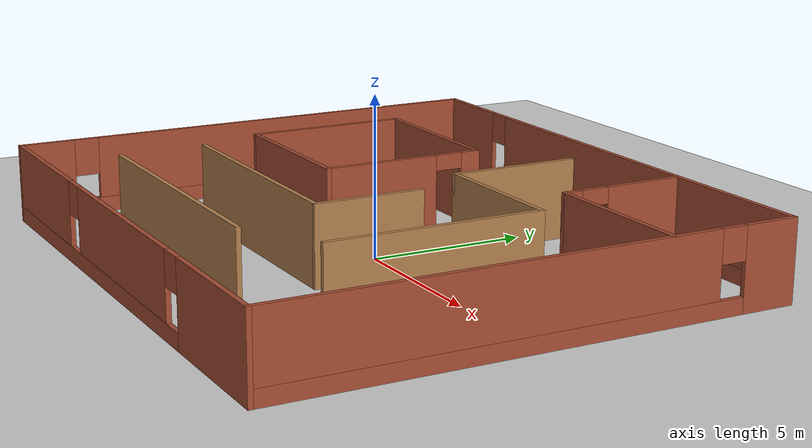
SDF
<sdf version="1.7">
 <world name="default">
  <light name="sun" type="directional">
   <pose>0 0 10 0 -0 0</pose>
   <diffuse>0.8 0.8 0.8 1</diffuse>
   <specular>0.2 0.2 0.2 1</specular>
   <attenuation>
    <range>1000</range>
    <constant>0.9</constant>
    <linear>0.01</linear>
    <quadratic>0.001</quadratic>
   </attenuation>
   <direction>-0.5 0.1 -0.9</direction>
   <spot><inner_angle>0</inner_angle><outer_angle>0</outer_angle><falloff>0</falloff></spot>
  </light>
  <model name="ground_plane">
   <static>1</static>
   <link name="link">
    <collision name="collision">
     <geometry><plane><normal>0 0 1</normal><size>100 100</size></plane></geometry>
     <surface><friction><ode><mu>100</mu><mu2>50</mu2></ode></friction></surface>
    </collision>
    <visual name="visual">
     <cast_shadows>0</cast_shadows>
     <geometry><plane><normal>0 0 1</normal><size>100 100</size></plane></geometry>
     <material>
      <script><uri>file://media/materials/scripts/gazebo.material</uri><name>Gazebo/Grey</name></script>
     </material>
    </visual>
   </link>
  </model>
  <gravity>0 0 -9.8</gravity>
  <magnetic_field>6e-06 2.3e-05 -4.2e-05</magnetic_field>
  <atmosphere type="adiabatic"/>
  <physics type="ode">
   <max_step_size>0.001</max_step_size>
   <real_time_factor>1</real_time_factor>
   <real_time_update_rate>1000</real_time_update_rate>
  </physics>
  <scene><ambient>0.4 0.4 0.4 1</ambient><background>0.7 0.7 0.7 1</background><shadows>1</shadows></scene>
  <audio><device>default</device></audio>
  <spherical_coordinates>
   <surface_model>EARTH_WGS84</surface_model>
   <latitude_deg>0</latitude_deg>
   <longitude_deg>0</longitude_deg>
   <elevation>0</elevation>
   <heading_deg>0</heading_deg>
  </spherical_coordinates>
  <model name="maze">
   <link name="Wall_10">
    <pose>-1.7 1.9 0 0 -0 -1.5708</pose>
    <visual name="Wall_10_Visual_0">
     <pose>-2.34689 0 1.25 0 -0 0</pose>
     <geometry><box><size>0.656221 0.15 2.5</size></box></geometry>
     <material>
      <script><uri>file://media/materials/scripts/gazebo.material</uri><name>Gazebo/Bricks</name></script>
      <ambient>1 1 1 1</ambient>
     </material>
     <meta><layer>0</layer></meta>
    </visual>
    <collision name="Wall_10_Collision_0">
     <geometry><box><size>0.656221 0.15 2.5</size></box></geometry>
     <pose>-2.34689 0 1.25 0 -0 0</pose>
    </collision>
    <visual name="Wall_10_Visual_1">
     <pose>0.77811 0 1.25 0 -0 0</pose>
     <geometry><box><size>3.79378 0.15 2.5</size></box></geometry>
     <material>
      <script><uri>file://media/materials/scripts/gazebo.material</uri><name>Gazebo/Bricks</name></script>
      <ambient>1 1 1 1</ambient>
     </material>
     <meta><layer>0</layer></meta>
    </visual>
    <collision name="Wall_10_Collision_1">
     <geometry><box><size>3.79378 0.15 2.5</size></box></geometry>
     <pose>0.77811 0 1.25 0 -0 0</pose>
    </collision>
    <visual name="Wall_10_Visual_2">
     <pose>-1.56878 0 2.25 0 -0 0</pose>
     <geometry><box><size>0.9 0.15 0.5</size></box></geometry>
     <material>
      <script><uri>file://media/materials/scripts/gazebo.material</uri><name>Gazebo/Bricks</name></script>
      <ambient>1 1 1 1</ambient>
     </material>
     <meta><layer>0</layer></meta>
    </visual>
    <collision name="Wall_10_Collision_2">
     <geometry><box><size>0.9 0.15 0.5</size></box></geometry>
     <pose>-1.56878 0 2.25 0 -0 0</pose>
    </collision>
   </link>
   <link name="Wall_11">
    <collision name="Wall_11_Collision">
     <geometry><box><size>5.45 0.15 2.5</size></box></geometry>
     <pose>0 0 1.25 0 -0 0</pose>
    </collision>
    <visual name="Wall_11_Visual">
     <pose>0 0 1.25 0 -0 0</pose>
     <geometry><box><size>5.45 0.15 2.5</size></box></geometry>
     <material>
      <script><uri>file://media/materials/scripts/gazebo.material</uri><name>Gazebo/Bricks</name></script>
      <ambient>1 1 1 1</ambient>
     </material>
     <meta><layer>0</layer></meta>
    </visual>
    <pose>-4.35 -0.7 0 0 -0 3.14159</pose>
   </link>
   <link name="Wall_12">
    <collision name="Wall_12_Collision">
     <geometry><box><size>5.35 0.15 2.5</size></box></geometry>
     <pose>0 0 1.25 0 -0 0</pose>
    </collision>
    <visual name="Wall_12_Visual">
     <pose>0 0 1.25 0 -0 0</pose>
     <geometry><box><size>5.35 0.15 2.5</size></box></geometry>
     <material>
      <script><uri>file://media/materials/scripts/gazebo.material</uri><name>Gazebo/Bricks</name></script>
      <ambient>1 1 1 1</ambient>
     </material>
     <meta><layer>0</layer></meta>
    </visual>
    <pose>-7 1.9 0 0 -0 1.5708</pose>
   </link>
   <link name="Wall_14">
    <collision name="Wall_14_Collision">
     <geometry><box><size>8.25 0.15 2.5</size></box></geometry>
     <pose>0 0 1.25 0 -0 0</pose>
    </collision>
    <visual name="Wall_14_Visual">
     <pose>0 0 1.25 0 -0 0</pose>
     <geometry><box><size>8.25 0.15 2.5</size></box></geometry>
     <material>
      <script><uri>file://media/materials/scripts/gazebo.material</uri><name>Gazebo/Wood</name></script>
      <ambient>1 1 1 1</ambient>
     </material>
     <meta><layer>0</layer></meta>
    </visual>
    <pose>-2.29976 -2.79181 0 0 -0 0</pose>
   </link>
   <link name="Wall_15">
    <collision name="Wall_15_Collision">
     <geometry><box><size>3.5 0.15 2.5</size></box></geometry>
     <pose>0 0 1.25 0 -0 0</pose>
    </collision>
    <visual name="Wall_15_Visual">
     <pose>0 0 1.25 0 -0 0</pose>
     <geometry><box><size>3.5 0.15 2.5</size></box></geometry>
     <material>
      <script><uri>file://media/materials/scripts/gazebo.material</uri><name>Gazebo/Wood</name></script>
      <ambient>1 1 1 1</ambient>
     </material>
     <meta><layer>0</layer></meta>
    </visual>
    <pose>1.75024 -1.11681 0 0 -0 1.5708</pose>
   </link>
   <link name="Wall_21">
    <pose>4 6 0 0 -0 -1.5708</pose>
    <visual name="Wall_21_Visual_0">
     <pose>-0.7625 0 1.25 0 -0 0</pose>
     <geometry><box><size>2.625 0.15 2.5</size></box></geometry>
     <material>
      <script><uri>file://media/materials/scripts/gazebo.material</uri><name>Gazebo/Bricks</name></script>
      <ambient>1 1 1 1</ambient>
     </material>
     <meta><layer>0</layer></meta>
    </visual>
    <collision name="Wall_21_Collision_0">
     <geometry><box><size>2.625 0.15 2.5</size></box></geometry>
     <pose>-0.7625 0 1.25 0 -0 0</pose>
    </collision>
    <visual name="Wall_21_Visual_1">
     <pose>1.7625 0 1.25 0 -0 0</pose>
     <geometry><box><size>0.625 0.15 2.5</size></box></geometry>
     <material>
      <script><uri>file://media/materials/scripts/gazebo.material</uri><name>Gazebo/Bricks</name></script>
      <ambient>1 1 1 1</ambient>
     </material>
     <meta><layer>0</layer></meta>
    </visual>
    <collision name="Wall_21_Collision_1">
     <geometry><box><size>0.625 0.15 2.5</size></box></geometry>
     <pose>1.7625 0 1.25 0 -0 0</pose>
    </collision>
    <visual name="Wall_21_Visual_2">
     <pose>1 0 2.25 0 -0 0</pose>
     <geometry><box><size>0.9 0.15 0.5</size></box></geometry>
     <material>
      <script><uri>file://media/materials/scripts/gazebo.material</uri><name>Gazebo/Bricks</name></script>
      <ambient>1 1 1 1</ambient>
     </material>
     <meta><layer>0</layer></meta>
    </visual>
    <collision name="Wall_21_Collision_2">
     <geometry><box><size>0.9 0.15 0.5</size></box></geometry>
     <pose>1 0 2.25 0 -0 0</pose>
    </collision>
   </link>
   <link name="Wall_22">
    <collision name="Wall_22_Collision">
     <geometry><box><size>5.15 0.15 2.5</size></box></geometry>
     <pose>0 0 1.25 0 -0 0</pose>
    </collision>
    <visual name="Wall_22_Visual">
     <pose>0 0 1.25 0 -0 0</pose>
     <geometry><box><size>5.15 0.15 2.5</size></box></geometry>
     <material>
      <script><uri>file://media/materials/scripts/gazebo.material</uri><name>Gazebo/Bricks</name></script>
      <ambient>1 1 1 1</ambient>
     </material>
     <meta><layer>0</layer></meta>
    </visual>
    <pose>6.5 4 0 0 -0 0</pose>
   </link>
   <link name="Wall_27">
    <collision name="Wall_27_Collision">
     <geometry><box><size>4.25 0.15 2.5</size></box></geometry>
     <pose>0 0 1.25 0 -0 0</pose>
    </collision>
    <visual name="Wall_27_Visual">
     <pose>0 0 1.25 0 -0 0</pose>
     <geometry><box><size>4.25 0.15 2.5</size></box></geometry>
     <material>
      <script><uri>file://media/materials/scripts/gazebo.material</uri><name>Gazebo/Wood</name></script>
      <ambient>1 1 1 1</ambient>
     </material>
     <meta><layer>0</layer></meta>
    </visual>
    <pose>0.649057 4.42252 0 0 -0 -1.5708</pose>
   </link>
   <link name="Wall_28">
    <collision name="Wall_28_Collision">
     <geometry><box><size>4.75 0.15 2.5</size></box></geometry>
     <pose>0 0 1.25 0 -0 0</pose>
    </collision>
    <visual name="Wall_28_Visual">
     <pose>0 0 1.25 0 -0 0</pose>
     <geometry><box><size>4.75 0.15 2.5</size></box></geometry>
     <material>
      <script><uri>file://media/materials/scripts/gazebo.material</uri><name>Gazebo/Wood</name></script>
      <ambient>1 1 1 1</ambient>
     </material>
     <meta><layer>0</layer></meta>
    </visual>
    <pose>2.94906 2.37252 0 0 -0 0</pose>
   </link>
   <link name="Wall_29">
    <collision name="Wall_29_Collision">
     <geometry><box><size>6.75 0.15 2.5</size></box></geometry>
     <pose>0 0 1.25 0 -0 0</pose>
    </collision>
    <visual name="Wall_29_Visual">
     <pose>0 0 1.25 0 -0 0</pose>
     <geometry><box><size>6.75 0.15 2.5</size></box></geometry>
     <material>
      <script><uri>file://media/materials/scripts/gazebo.material</uri><name>Gazebo/Wood</name></script>
      <ambient>1 1 1 1</ambient>
     </material>
     <meta><layer>0</layer></meta>
    </visual>
    <pose>5.24906 -0.927482 0 0 -0 -1.5708</pose>
   </link>
   <link name="Wall_31">
    <collision name="Wall_31_Collision">
     <geometry><box><size>9.25 0.15 2.5</size></box></geometry>
     <pose>0 0 1.25 0 -0 0</pose>
    </collision>
    <visual name="Wall_31_Visual">
     <pose>0 0 1.25 0 -0 0</pose>
     <geometry><box><size>9.25 0.15 2.5</size></box></geometry>
     <material>
      <script><uri>file://media/materials/scripts/gazebo.material</uri><name>Gazebo/Wood</name></script>
      <ambient>1 1 1 1</ambient>
     </material>
     <meta><layer>0</layer></meta>
    </visual>
    <pose>-1.67839 -5.6237 0 0 -0 0</pose>
   </link>
   <link name="Wall_4">
    <pose>0 8 0 0 -0 0</pose>
    <visual name="Wall_4_Visual_0">
     <pose>-7.64942 0 1.25 0 -0 0</pose>
     <geometry><box><size>2.85116 0.15 2.5</size></box></geometry>
     <material>
      <script><uri>file://media/materials/scripts/gazebo.material</uri><name>Gazebo/Bricks</name></script>
      <ambient>1 1 1 1</ambient>
     </material>
     <meta><layer>0</layer></meta>
    </visual>
    <collision name="Wall_4_Collision_0">
     <geometry><box><size>2.85116 0.15 2.5</size></box></geometry>
     <pose>-7.64942 0 1.25 0 -0 0</pose>
    </collision>
    <visual name="Wall_4_Visual_1">
     <pose>1.42558 0 0.25 0 -0 0</pose>
     <geometry><box><size>15.2988 0.15 0.5</size></box></geometry>
     <material>
      <script><uri>file://media/materials/scripts/gazebo.material</uri><name>Gazebo/Bricks</name></script>
      <ambient>1 1 1 1</ambient>
     </material>
     <meta><layer>0</layer></meta>
    </visual>
    <collision name="Wall_4_Collision_1">
     <geometry><box><size>15.2988 0.15 0.5</size></box></geometry>
     <pose>1.42558 0 0.25 0 -0 0</pose>
    </collision>
    <visual name="Wall_4_Visual_2">
     <pose>1.82558 0 1.5 0 -0 0</pose>
     <geometry><box><size>14.4988 0.15 2</size></box></geometry>
     <material>
      <script><uri>file://media/materials/scripts/gazebo.material</uri><name>Gazebo/Bricks</name></script>
      <ambient>1 1 1 1</ambient>
     </material>
     <meta><layer>0</layer></meta>
    </visual>
    <collision name="Wall_4_Collision_2">
     <geometry><box><size>14.4988 0.15 2</size></box></geometry>
     <pose>1.82558 0 1.5 0 -0 0</pose>
    </collision>
    <visual name="Wall_4_Visual_3">
     <pose>-5.82383 0 2 0 -0 0</pose>
     <geometry><box><size>0.8 0.15 1</size></box></geometry>
     <material>
      <script><uri>file://media/materials/scripts/gazebo.material</uri><name>Gazebo/Bricks</name></script>
      <ambient>1 1 1 1</ambient>
     </material>
     <meta><layer>0</layer></meta>
    </visual>
    <collision name="Wall_4_Collision_3">
     <geometry><box><size>0.8 0.15 1</size></box></geometry>
     <pose>-5.82383 0 2 0 -0 0</pose>
    </collision>
   </link>
   <link name="Wall_5">
    <pose>9 0 0 0 -0 -1.5708</pose>
    <visual name="Wall_5_Visual_0">
     <pose>-7.2108 0 1.25 0 -0 0</pose>
     <geometry><box><size>1.7284 0.15 2.5</size></box></geometry>
     <material>
      <script><uri>file://media/materials/scripts/gazebo.material</uri><name>Gazebo/Bricks</name></script>
      <ambient>1 1 1 1</ambient>
     </material>
     <meta><layer>0</layer></meta>
    </visual>
    <collision name="Wall_5_Collision_0">
     <geometry><box><size>1.7284 0.15 2.5</size></box></geometry>
     <pose>-7.2108 0 1.25 0 -0 0</pose>
    </collision>
    <visual name="Wall_5_Visual_1">
     <pose>0.864202 0 0.25 0 -0 0</pose>
     <geometry><box><size>14.4216 0.15 0.5</size></box></geometry>
     <material>
      <script><uri>file://media/materials/scripts/gazebo.material</uri><name>Gazebo/Bricks</name></script>
      <ambient>1 1 1 1</ambient>
     </material>
     <meta><layer>0</layer></meta>
    </visual>
    <collision name="Wall_5_Collision_1">
     <geometry><box><size>14.4216 0.15 0.5</size></box></geometry>
     <pose>0.864202 0 0.25 0 -0 0</pose>
    </collision>
    <visual name="Wall_5_Visual_2">
     <pose>1.2642 0 1.5 0 -0 0</pose>
     <geometry><box><size>13.6216 0.15 2</size></box></geometry>
     <material>
      <script><uri>file://media/materials/scripts/gazebo.material</uri><name>Gazebo/Bricks</name></script>
      <ambient>1 1 1 1</ambient>
     </material>
     <meta><layer>0</layer></meta>
    </visual>
    <collision name="Wall_5_Collision_2">
     <geometry><box><size>13.6216 0.15 2</size></box></geometry>
     <pose>1.2642 0 1.5 0 -0 0</pose>
    </collision>
    <visual name="Wall_5_Visual_3">
     <pose>-5.9466 0 2 0 -0 0</pose>
     <geometry><box><size>0.8 0.15 1</size></box></geometry>
     <material>
      <script><uri>file://media/materials/scripts/gazebo.material</uri><name>Gazebo/Bricks</name></script>
      <ambient>1 1 1 1</ambient>
     </material>
     <meta><layer>0</layer></meta>
    </visual>
    <collision name="Wall_5_Collision_3">
     <geometry><box><size>0.8 0.15 1</size></box></geometry>
     <pose>-5.9466 0 2 0 -0 0</pose>
    </collision>
   </link>
   <link name="Wall_6">
    <pose>0 -8 0 0 -0 3.14159</pose>
    <visual name="Wall_6_Visual_0">
     <pose>-6.90276 0 1.25 0 -0 0</pose>
     <geometry><box><size>4.34449 0.15 2.5</size></box></geometry>
     <material>
      <script><uri>file://media/materials/scripts/gazebo.material</uri><name>Gazebo/Bricks</name></script>
      <ambient>1 1 1 1</ambient>
     </material>
     <meta><layer>0</layer></meta>
    </visual>
    <collision name="Wall_6_Collision_0">
     <geometry><box><size>4.34449 0.15 2.5</size></box></geometry>
     <pose>-6.90276 0 1.25 0 -0 0</pose>
    </collision>
    <visual name="Wall_6_Visual_1">
     <pose>2.17224 0 0.25 0 -0 0</pose>
     <geometry><box><size>13.8055 0.15 0.5</size></box></geometry>
     <material>
      <script><uri>file://media/materials/scripts/gazebo.material</uri><name>Gazebo/Bricks</name></script>
      <ambient>1 1 1 1</ambient>
     </material>
     <meta><layer>0</layer></meta>
    </visual>
    <collision name="Wall_6_Collision_1">
     <geometry><box><size>13.8055 0.15 0.5</size></box></geometry>
     <pose>2.17224 0 0.25 0 -0 0</pose>
    </collision>
    <visual name="Wall_6_Visual_2">
     <pose>-0.426551 0 1.5 0 -0 0</pose>
     <geometry><box><size>7.00793 0.15 2</size></box></geometry>
     <material>
      <script><uri>file://media/materials/scripts/gazebo.material</uri><name>Gazebo/Bricks</name></script>
      <ambient>1 1 1 1</ambient>
     </material>
     <meta><layer>0</layer></meta>
    </visual>
    <collision name="Wall_6_Collision_2">
     <geometry><box><size>7.00793 0.15 2</size></box></geometry>
     <pose>-0.426551 0 1.5 0 -0 0</pose>
    </collision>
    <visual name="Wall_6_Visual_3">
     <pose>6.47621 0 1.5 0 -0 0</pose>
     <geometry><box><size>5.19759 0.15 2</size></box></geometry>
     <material>
      <script><uri>file://media/materials/scripts/gazebo.material</uri><name>Gazebo/Bricks</name></script>
      <ambient>1 1 1 1</ambient>
     </material>
     <meta><layer>0</layer></meta>
    </visual>
    <collision name="Wall_6_Collision_3">
     <geometry><box><size>5.19759 0.15 2</size></box></geometry>
     <pose>6.47621 0 1.5 0 -0 0</pose>
    </collision>
    <visual name="Wall_6_Visual_4">
     <pose>-4.33051 0 2 0 -0 0</pose>
     <geometry><box><size>0.8 0.15 1</size></box></geometry>
     <material>
      <script><uri>file://media/materials/scripts/gazebo.material</uri><name>Gazebo/Bricks</name></script>
      <ambient>1 1 1 1</ambient>
     </material>
     <meta><layer>0</layer></meta>
    </visual>
    <collision name="Wall_6_Collision_4">
     <geometry><box><size>0.8 0.15 1</size></box></geometry>
     <pose>-4.33051 0 2 0 -0 0</pose>
    </collision>
    <visual name="Wall_6_Visual_5">
     <pose>3.47741 0 2 0 -0 0</pose>
     <geometry><box><size>0.8 0.15 1</size></box></geometry>
     <material>
      <script><uri>file://media/materials/scripts/gazebo.material</uri><name>Gazebo/Bricks</name></script>
      <ambient>1 1 1 1</ambient>
     </material>
     <meta><layer>0</layer></meta>
    </visual>
    <collision name="Wall_6_Collision_5">
     <geometry><box><size>0.8 0.15 1</size></box></geometry>
     <pose>3.47741 0 2 0 -0 0</pose>
    </collision>
   </link>
   <link name="Wall_7">
    <pose>-9 0 0 0 -0 1.5708</pose>
    <visual name="Wall_7_Visual_0">
     <pose>-7.17072 0 1.25 0 -0 0</pose>
     <geometry><box><size>1.80857 0.15 2.5</size></box></geometry>
     <material>
      <script><uri>file://media/materials/scripts/gazebo.material</uri><name>Gazebo/Bricks</name></script>
      <ambient>1 1 1 1</ambient>
     </material>
     <meta><layer>0</layer></meta>
    </visual>
    <collision name="Wall_7_Collision_0">
     <geometry><box><size>1.80857 0.15 2.5</size></box></geometry>
     <pose>-7.17072 0 1.25 0 -0 0</pose>
    </collision>
    <visual name="Wall_7_Visual_1">
     <pose>0.904283 0 0.25 0 -0 0</pose>
     <geometry><box><size>14.3414 0.15 0.5</size></box></geometry>
     <material>
      <script><uri>file://media/materials/scripts/gazebo.material</uri><name>Gazebo/Bricks</name></script>
      <ambient>1 1 1 1</ambient>
     </material>
     <meta><layer>0</layer></meta>
    </visual>
    <collision name="Wall_7_Collision_1">
     <geometry><box><size>14.3414 0.15 0.5</size></box></geometry>
     <pose>0.904283 0 0.25 0 -0 0</pose>
    </collision>
    <visual name="Wall_7_Visual_2">
     <pose>1.30428 0 1.5 0 -0 0</pose>
     <geometry><box><size>13.5414 0.15 2</size></box></geometry>
     <material>
      <script><uri>file://media/materials/scripts/gazebo.material</uri><name>Gazebo/Bricks</name></script>
      <ambient>1 1 1 1</ambient>
     </material>
     <meta><layer>0</layer></meta>
    </visual>
    <collision name="Wall_7_Collision_2">
     <geometry><box><size>13.5414 0.15 2</size></box></geometry>
     <pose>1.30428 0 1.5 0 -0 0</pose>
    </collision>
    <visual name="Wall_7_Visual_3">
     <pose>-5.86643 0 1.9 0 -0 0</pose>
     <geometry><box><size>0.8 0.15 1.2</size></box></geometry>
     <material>
      <script><uri>file://media/materials/scripts/gazebo.material</uri><name>Gazebo/Bricks</name></script>
      <ambient>1 1 1 1</ambient>
     </material>
     <meta><layer>0</layer></meta>
    </visual>
    <collision name="Wall_7_Collision_3">
     <geometry><box><size>0.8 0.15 1.2</size></box></geometry>
     <pose>-5.86643 0 1.9 0 -0 0</pose>
    </collision>
   </link>
   <link name="Wall_9">
    <collision name="Wall_9_Collision">
     <geometry><box><size>5.45 0.15 2.5</size></box></geometry>
     <pose>0 0 1.25 0 -0 0</pose>
    </collision>
    <visual name="Wall_9_Visual">
     <pose>0 0 1.25 0 -0 0</pose>
     <geometry><box><size>5.45 0.15 2.5</size></box></geometry>
     <material>
      <script><uri>file://media/materials/scripts/gazebo.material</uri><name>Gazebo/Bricks</name></script>
      <ambient>1 1 1 1</ambient>
     </material>
     <meta><layer>0</layer></meta>
    </visual>
    <pose>-4.35 4.5 0 0 -0 0</pose>
   </link>
   <static>1</static>
  </model>
  <model name="maze_0">
   <link name="link_0">
    <inertial>
     <mass>1</mass>
     <inertia>
      <ixx>0.166667</ixx>
      <ixy>0</ixy>
      <ixz>0</ixz>
      <iyy>0.166667</iyy>
      <iyz>0</iyz>
      <izz>0.166667</izz>
     </inertia>
    </inertial>
    <pose>5.67833 4.90849 0 0 -0 0</pose>
    <visual name="visual">
     <geometry><box><size>1 1 1</size></box></geometry>
     <material>
      <lighting>1</lighting>
      <script><uri>file://media/materials/scripts/gazebo.material</uri><name>Gazebo/Grey</name></script>
      <shader type="pixel"/>
     </material>
    </visual>
    <collision name="collision">
     <geometry><box><size>1 1 1</size></box></geometry>
     <surface>
      <friction>
       <ode><mu>1</mu><mu2>1</mu2><fdir1>0 0 0</fdir1><slip1>0</slip1><slip2>0</slip2></ode>
       <torsional>
        <coefficient>1</coefficient>
        <patch_radius>0</patch_radius>
        <surface_radius>0</surface_radius>
        <use_patch_radius>1</use_patch_radius>
        <ode><slip>0</slip></ode>
       </torsional>
      </friction>
      <bounce><restitution_coefficient>0</restitution_coefficient><threshold>1e+06</threshold></bounce>
      <contact>
       <collide_without_contact>0</collide_without_contact>
       <collide_without_contact_bitmask>1</collide_without_contact_bitmask>
       <collide_bitmask>1</collide_bitmask>
       <ode>
        <soft_cfm>0</soft_cfm>
        <soft_erp>0.2</soft_erp>
        <kp>1e+13</kp>
        <kd>1</kd>
        <max_vel>0.01</max_vel>
        <min_depth>0</min_depth>
       </ode>
       <bullet>
        <split_impulse>1</split_impulse>
        <split_impulse_penetration_threshold>-0.01</split_impulse_penetration_threshold>
        <soft_cfm>0</soft_cfm>
        <soft_erp>0.2</soft_erp>
        <kp>1e+13</kp>
        <kd>1</kd>
       </bullet>
      </contact>
     </surface>
    </collision>
   </link>
   <link name="link_1">
    <inertial>
     <mass>1</mass>
     <inertia>
      <ixx>0.166667</ixx>
      <ixy>0</ixy>
      <ixz>0</ixz>
      <iyy>0.166667</iyy>
      <iyz>0</iyz>
      <izz>0.166667</izz>
     </inertia>
    </inertial>
    <pose>-6.21503 1.37353 0 0 -0 0</pose>
    <visual name="visual">
     <geometry><box><size>1 1 1</size></box></geometry>
     <material>
      <lighting>1</lighting>
      <script><uri>file://media/materials/scripts/gazebo.material</uri><name>Gazebo/Grey</name></script>
      <shader type="pixel"/>
     </material>
    </visual>
    <collision name="collision">
     <geometry><box><size>1 1 1</size></box></geometry>
     <surface>
      <friction>
       <ode><mu>1</mu><mu2>1</mu2><fdir1>0 0 0</fdir1><slip1>0</slip1><slip2>0</slip2></ode>
       <torsional>
        <coefficient>1</coefficient>
        <patch_radius>0</patch_radius>
        <surface_radius>0</surface_radius>
        <use_patch_radius>1</use_patch_radius>
        <ode><slip>0</slip></ode>
       </torsional>
      </friction>
      <bounce><restitution_coefficient>0</restitution_coefficient><threshold>1e+06</threshold></bounce>
      <contact>
       <collide_without_contact>0</collide_without_contact>
       <collide_without_contact_bitmask>1</collide_without_contact_bitmask>
       <collide_bitmask>1</collide_bitmask>
       <ode>
        <soft_cfm>0</soft_cfm>
        <soft_erp>0.2</soft_erp>
        <kp>1e+13</kp>
        <kd>1</kd>
        <max_vel>0.01</max_vel>
        <min_depth>0</min_depth>
       </ode>
       <bullet>
        <split_impulse>1</split_impulse>
        <split_impulse_penetration_threshold>-0.01</split_impulse_penetration_threshold>
        <soft_cfm>0</soft_cfm>
        <soft_erp>0.2</soft_erp>
        <kp>1e+13</kp>
        <kd>1</kd>
       </bullet>
      </contact>
     </surface>
    </collision>
   </link>
   <link name="link_2">
    <inertial>
     <mass>1</mass>
     <inertia><ixx>0.1</ixx><ixy>0</ixy><ixz>0</ixz><iyy>0.1</iyy><iyz>0</iyz><izz>0.1</izz></inertia>
    </inertial>
    <pose>-4.15613 0.37374 0 0 -0 0</pose>
    <visual name="visual">
     <geometry><sphere><radius>0.5</radius></sphere></geometry>
     <material>
      <lighting>1</lighting>
      <script><uri>file://media/materials/scripts/gazebo.material</uri><name>Gazebo/Grey</name></script>
      <shader type="pixel"/>
     </material>
    </visual>
    <collision name="collision">
     <geometry><sphere><radius>0.5</radius></sphere></geometry>
     <surface>
      <friction>
       <ode><mu>1</mu><mu2>1</mu2><fdir1>0 0 0</fdir1><slip1>0</slip1><slip2>0</slip2></ode>
       <torsional>
        <coefficient>1</coefficient>
        <patch_radius>0</patch_radius>
        <surface_radius>0</surface_radius>
        <use_patch_radius>1</use_patch_radius>
        <ode><slip>0</slip></ode>
       </torsional>
      </friction>
      <bounce><restitution_coefficient>0</restitution_coefficient><threshold>1e+06</threshold></bounce>
      <contact>
       <collide_without_contact>0</collide_without_contact>
       <collide_without_contact_bitmask>1</collide_without_contact_bitmask>
       <collide_bitmask>1</collide_bitmask>
       <ode>
        <soft_cfm>0</soft_cfm>
        <soft_erp>0.2</soft_erp>
        <kp>1e+13</kp>
        <kd>1</kd>
        <max_vel>0.01</max_vel>
        <min_depth>0</min_depth>
       </ode>
       <bullet>
        <split_impulse>1</split_impulse>
        <split_impulse_penetration_threshold>-0.01</split_impulse_penetration_threshold>
        <soft_cfm>0</soft_cfm>
        <soft_erp>0.2</soft_erp>
        <kp>1e+13</kp>
        <kd>1</kd>
       </bullet>
      </contact>
     </surface>
    </collision>
   </link>
   <link name="link_3">
    <inertial>
     <mass>1</mass>
     <inertia><ixx>0.145833</ixx><ixy>0</ixy><ixz>0</ixz><iyy>0.145833</iyy><iyz>0</iyz><izz>0.125</izz></inertia>
    </inertial>
    <pose>4.69282 -6.65577 0 0 -0 0</pose>
    <visual name="visual">
     <geometry><cylinder><radius>0.5</radius><length>1</length></cylinder></geometry>
     <material>
      <lighting>1</lighting>
      <script><uri>file://media/materials/scripts/gazebo.material</uri><name>Gazebo/Grey</name></script>
      <shader type="pixel"/>
     </material>
    </visual>
    <collision name="collision">
     <geometry><cylinder><radius>0.5</radius><length>1</length></cylinder></geometry>
     <surface>
      <friction>
       <ode><mu>1</mu><mu2>1</mu2><fdir1>0 0 0</fdir1><slip1>0</slip1><slip2>0</slip2></ode>
       <torsional>
        <coefficient>1</coefficient>
        <patch_radius>0</patch_radius>
        <surface_radius>0</surface_radius>
        <use_patch_radius>1</use_patch_radius>
        <ode><slip>0</slip></ode>
       </torsional>
      </friction>
      <bounce><restitution_coefficient>0</restitution_coefficient><threshold>1e+06</threshold></bounce>
      <contact>
       <collide_without_contact>0</collide_without_contact>
       <collide_without_contact_bitmask>1</collide_without_contact_bitmask>
       <collide_bitmask>1</collide_bitmask>
       <ode>
        <soft_cfm>0</soft_cfm>
        <soft_erp>0.2</soft_erp>
        <kp>1e+13</kp>
        <kd>1</kd>
        <max_vel>0.01</max_vel>
        <min_depth>0</min_depth>
       </ode>
       <bullet>
        <split_impulse>1</split_impulse>
        <split_impulse_penetration_threshold>-0.01</split_impulse_penetration_threshold>
        <soft_cfm>0</soft_cfm>
        <soft_erp>0.2</soft_erp>
        <kp>1e+13</kp>
        <kd>1</kd>
       </bullet>
      </contact>
     </surface>
    </collision>
   </link>
   <static>0</static>
   <pose>0.740667 1.14741 0.5 0 -0 0</pose>
  </model>
 </world>
</sdf>
